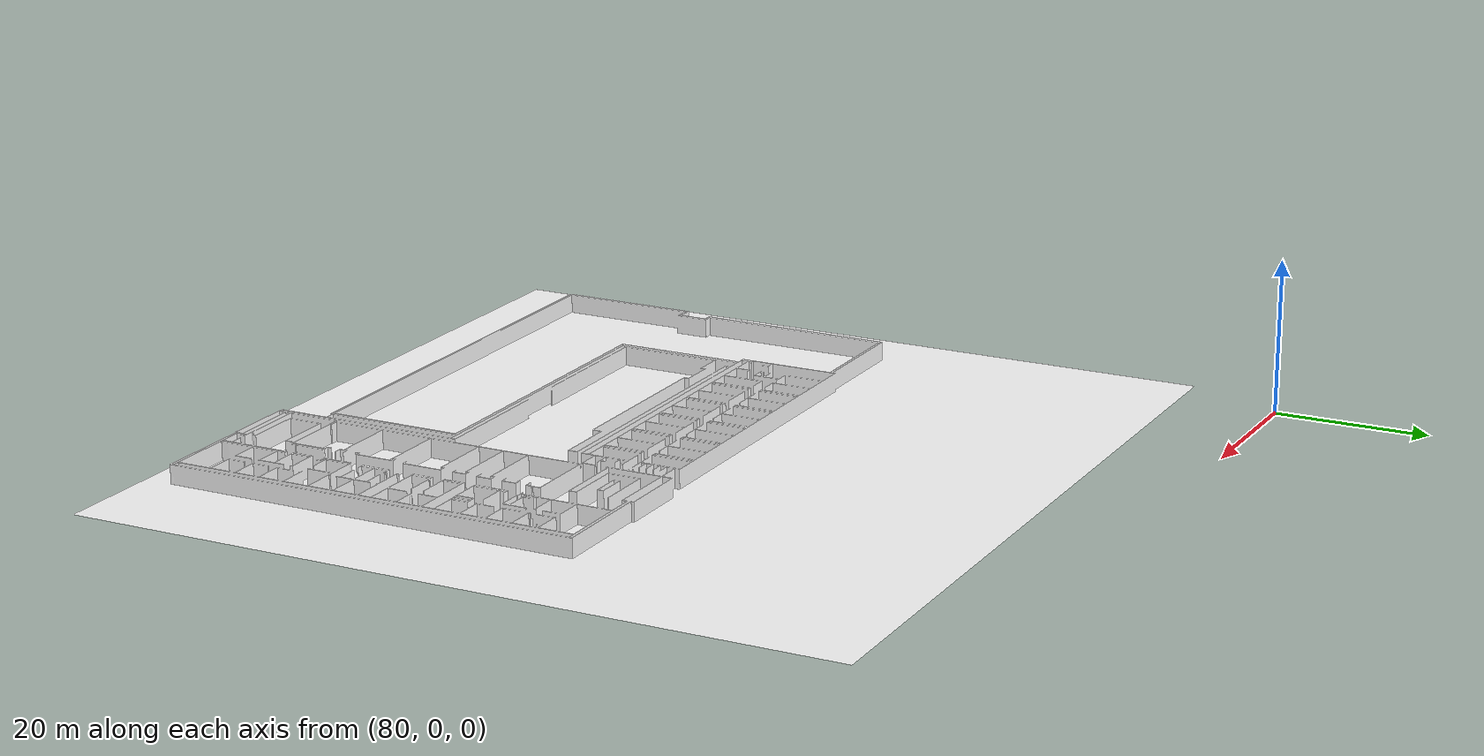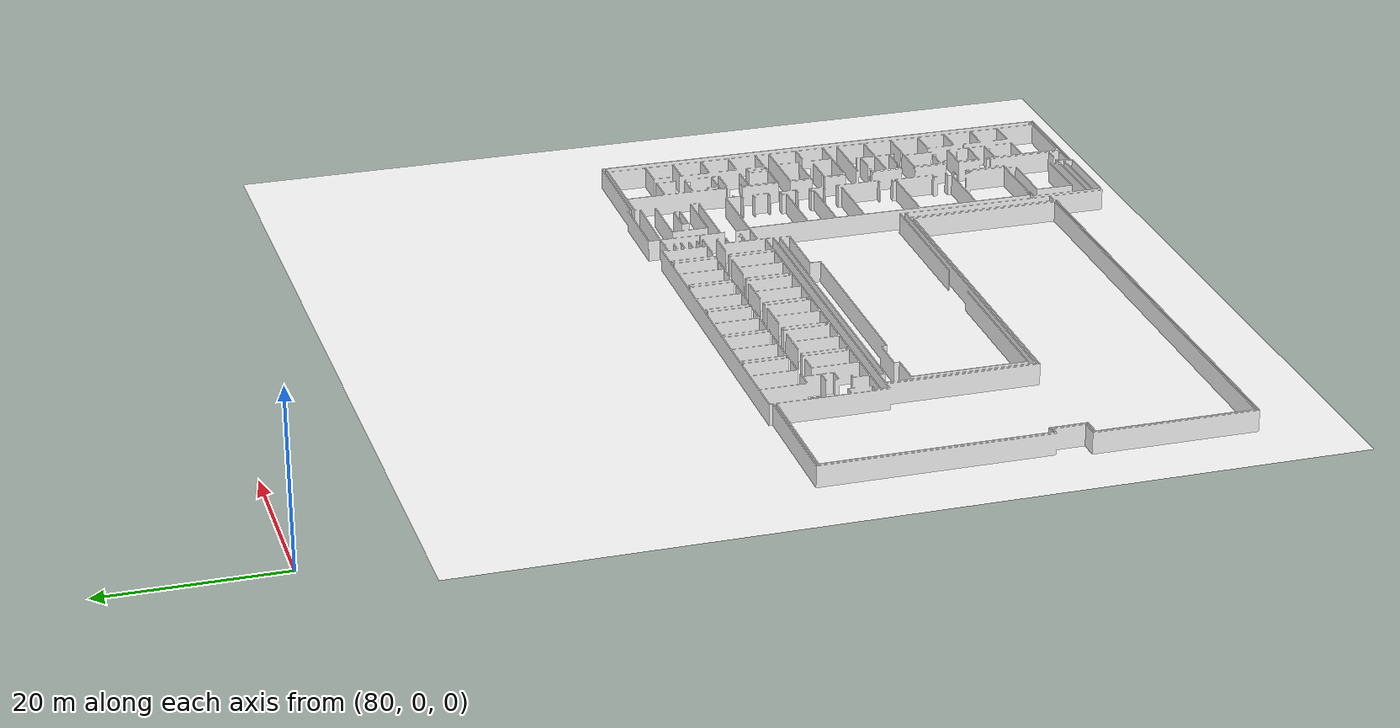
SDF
<?xml version='1.0' encoding='utf-8'?>
<sdf version="1.7">
  <model name="psychology_planta_2">
    <static>true</static>
    <link name="floor_1">
      <visual name="visual">
        <geometry>
          <mesh>
            <uri>model://psychology_planta_2/meshes/floor_1.obj</uri>
          </mesh>
        </geometry>
        <material>
          <diffuse>1.0 1.0 1.0</diffuse>
          <specular>0.1 0.1 0.1</specular>
          <pbr>
            <metal>
              <metalness>0.0</metalness>
              <albedo_map>model://psychology_planta_2/meshes/blue_linoleum.png</albedo_map>
            </metal>
          </pbr>
          <script>
            <uri>model://psychology_planta_2/meshes/</uri>
            <name>floor_1_Diffuse</name>
          </script>
        </material>
      </visual>
      <collision name="collision">
        <geometry>
          <mesh>
            <uri>model://psychology_planta_2/meshes/floor_1.obj</uri>
          </mesh>
        </geometry>
        <surface>
          <contact>
            <collide_bitmask>0x01</collide_bitmask>
          </contact>
        </surface>
      </collision>
    </link>
    <link name="wall_1">
      <visual name="wall_1">
        <geometry>
          <mesh>
            <uri>model://psychology_planta_2/meshes/wall_1.obj</uri>
          </mesh>
        </geometry>
        <transparency>0.0</transparency>
        <material>
          <diffuse>1.0 1.0 1.0</diffuse>
          <specular>0.1 0.1 0.1</specular>
          <pbr>
            <metal>
              <metalness>0.0</metalness>
              <albedo_map>model://psychology_planta_2/meshes/default.png</albedo_map>
            </metal>
          </pbr>
          <script>
            <uri>model://psychology_planta_2/meshes/</uri>
            <name>wall_1_Diffuse</name>
          </script>
        </material>
      </visual>
      <collision name="collision">
        <geometry>
          <mesh>
            <uri>model://psychology_planta_2/meshes/wall_1.obj</uri>
          </mesh>
        </geometry>
        <surface>
          <contact>
            <collide_bitmask>0x01</collide_bitmask>
          </contact>
        </surface>
      </collision>
      <pose>81.4373560775066 -109.0099156436318 0 0 0 0</pose>
    </link>
  </model>
</sdf>
